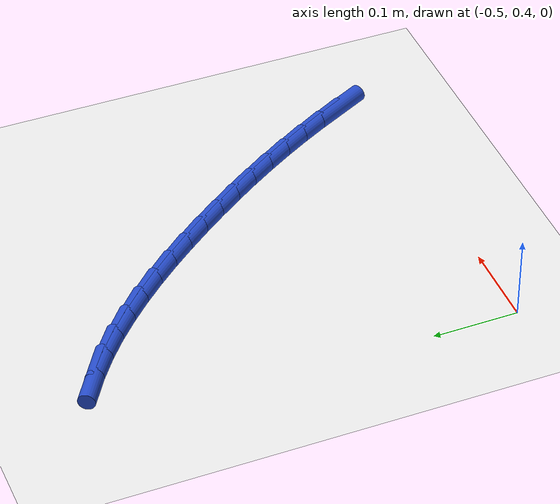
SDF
<sdf version="1.6">
 <world name="default">
  <model name="ground_plane">
   <static>1</static>
   <link name="link">
    <collision name="collision">
     <geometry><plane><normal>0 0 1</normal><size>100 100</size></plane></geometry>
     <surface><friction><ode><mu>100</mu><mu2>50</mu2></ode></friction></surface>
    </collision>
    <visual name="visual">
     <cast_shadows>0</cast_shadows>
     <geometry><plane><normal>0 0 1</normal><size>100 100</size></plane></geometry>
     <material>
      <script><uri>file://media/materials/scripts/gazebo.material</uri><name>Gazebo/WhiteGlow</name></script>
     </material>
    </visual>
   </link>
  </model>
  <model name="line">
   <link name="link_14">
    <pose>-0.10533587357686097 0.4467062673302369 0.01 0 1.57 -1.0991854840167534</pose>
    <collision name="collision">
     <geometry><cylinder><radius>0.01</radius><length>0.08</length></cylinder></geometry>
    </collision>
    <visual name="visual">
     <material>
      <script><name>Gazebo/Blue</name><uri>file://media/materials/scripts/gazebo.material</uri></script>
     </material>
     <geometry><cylinder><radius>0.01</radius><length>0.08</length></cylinder></geometry>
    </visual>
   </link>
   <link name="link_15">
    <pose>-0.12033190671898503 0.47611059716826165 0.01 0 1.57 -1.0717087342456912</pose>
    <collision name="collision">
     <geometry><cylinder><radius>0.01</radius><length>0.08</length></cylinder></geometry>
    </collision>
    <visual name="visual">
     <material>
      <script><name>Gazebo/Blue</name><uri>file://media/materials/scripts/gazebo.material</uri></script>
     </material>
     <geometry><cylinder><radius>0.01</radius><length>0.08</length></cylinder></geometry>
    </visual>
   </link>
   <link name="link_16">
    <pose>-0.1361529691423143 0.5051337660152084 0.01 0 1.57 -1.0454395284814884</pose>
    <collision name="collision">
     <geometry><cylinder><radius>0.01</radius><length>0.08</length></cylinder></geometry>
    </collision>
    <visual name="visual">
     <material>
      <script><name>Gazebo/Blue</name><uri>file://media/materials/scripts/gazebo.material</uri></script>
     </material>
     <geometry><cylinder><radius>0.01</radius><length>0.08</length></cylinder></geometry>
    </visual>
   </link>
   <link name="link_17">
    <pose>-0.1527603691347933 0.5337821962467407 0.01 0 1.57 -1.020375970094882</pose>
    <collision name="collision">
     <geometry><cylinder><radius>0.01</radius><length>0.08</length></cylinder></geometry>
    </collision>
    <visual name="visual">
     <material>
      <script><name>Gazebo/Blue</name><uri>file://media/materials/scripts/gazebo.material</uri></script>
     </material>
     <geometry><cylinder><radius>0.01</radius><length>0.08</length></cylinder></geometry>
    </visual>
   </link>
   <link name="link_18">
    <pose>-0.1701154149843666 0.5620623102385222 0.01 0 1.57 -0.9965099449236364</pose>
    <collision name="collision">
     <geometry><cylinder><radius>0.01</radius><length>0.08</length></cylinder></geometry>
    </collision>
    <visual name="visual">
     <material>
      <script><name>Gazebo/Blue</name><uri>file://media/materials/scripts/gazebo.material</uri></script>
     </material>
     <geometry><cylinder><radius>0.01</radius><length>0.08</length></cylinder></geometry>
    </visual>
   </link>
   <link name="link_19">
    <pose>-0.1881794149789789 0.5899805303662163 0.01 0 1.57 -0.9738282597687575</pose>
    <collision name="collision">
     <geometry><cylinder><radius>0.01</radius><length>0.08</length></cylinder></geometry>
    </collision>
    <visual name="visual">
     <material>
      <script><name>Gazebo/Blue</name><uri>file://media/materials/scripts/gazebo.material</uri></script>
     </material>
     <geometry><cylinder><radius>0.01</radius><length>0.08</length></cylinder></geometry>
    </visual>
   </link>
   <link name="link_20">
    <pose>-0.20691367740657482 0.617543279005487 0.01 0 1.57 -0.9523137074415136</pose>
    <collision name="collision">
     <geometry><cylinder><radius>0.01</radius><length>0.08</length></cylinder></geometry>
    </collision>
    <visual name="visual">
     <material>
      <script><name>Gazebo/Blue</name><uri>file://media/materials/scripts/gazebo.material</uri></script>
     </material>
     <geometry><cylinder><radius>0.01</radius><length>0.08</length></cylinder></geometry>
    </visual>
   </link>
   <link name="link_21">
    <pose>-0.22627951055509893 0.6447569785319979 0.01 0 1.57 -0.9319460433943224</pose>
    <collision name="collision">
     <geometry><cylinder><radius>0.01</radius><length>0.08</length></cylinder></geometry>
    </collision>
    <visual name="visual">
     <material>
      <script><name>Gazebo/Blue</name><uri>file://media/materials/scripts/gazebo.material</uri></script>
     </material>
     <geometry><cylinder><radius>0.01</radius><length>0.08</length></cylinder></geometry>
    </visual>
   </link>
   <link name="link_22">
    <pose>-0.24623822271249574 0.6716280513214121 0.01 0 1.57 -0.9121768304989757</pose>
    <collision name="collision">
     <geometry><cylinder><radius>0.01</radius><length>0.08</length></cylinder></geometry>
    </collision>
    <visual name="visual">
     <material>
      <script><name>Gazebo/Blue</name><uri>file://media/materials/scripts/gazebo.material</uri></script>
     </material>
     <geometry><cylinder><radius>0.01</radius><length>0.08</length></cylinder></geometry>
    </visual>
   </link>
   <link name="link_23">
    <pose>-0.26676074513045 0.6981465272667619 0.01 0 1.57 -0.8890715615643078</pose>
    <collision name="collision">
     <geometry><cylinder><radius>0.01</radius><length>0.08</length></cylinder></geometry>
    </collision>
    <visual name="visual">
     <material>
      <script><name>Gazebo/Blue</name><uri>file://media/materials/scripts/gazebo.material</uri></script>
     </material>
     <geometry><cylinder><radius>0.01</radius><length>0.08</length></cylinder></geometry>
    </visual>
   </link>
   <link name="link_24">
    <pose>-0.28788883141735166 0.7241817921140499 0.01 0 1.57 -0.8607309890439699</pose>
    <collision name="collision">
     <geometry><cylinder><radius>0.01</radius><length>0.08</length></cylinder></geometry>
    </collision>
    <visual name="visual">
     <material>
      <script><name>Gazebo/Blue</name><uri>file://media/materials/scripts/gazebo.material</uri></script>
     </material>
     <geometry><cylinder><radius>0.01</radius><length>0.08</length></cylinder></geometry>
    </visual>
   </link>
   <link name="link_25">
    <pose>-0.30969586198591387 0.749549356124075 0.01 0 1.57 -0.8269172972775372</pose>
    <collision name="collision">
     <geometry><cylinder><radius>0.01</radius><length>0.08</length></cylinder></geometry>
    </collision>
    <visual name="visual">
     <material>
      <script><name>Gazebo/Blue</name><uri>file://media/materials/scripts/gazebo.material</uri></script>
     </material>
     <geometry><cylinder><radius>0.01</radius><length>0.08</length></cylinder></geometry>
    </visual>
   </link>
   <link name="link_26">
    <pose>-0.33225536396307703 0.774064479633551 0.01 0 1.57 -0.7873707609153084</pose>
    <collision name="collision">
     <geometry><cylinder><radius>0.01</radius><length>0.08</length></cylinder></geometry>
    </collision>
    <visual name="visual">
     <material>
      <script><name>Gazebo/Blue</name><uri>file://media/materials/scripts/gazebo.material</uri></script>
     </material>
     <geometry><cylinder><radius>0.01</radius><length>0.08</length></cylinder></geometry>
    </visual>
   </link>
   <link name="link_27">
    <pose>-0.3556408644757811 0.7975424229791911 0.01 0 1.57 -0.741829771908615</pose>
    <collision name="collision">
     <geometry><cylinder><radius>0.01</radius><length>0.08</length></cylinder></geometry>
    </collision>
    <visual name="visual">
     <material>
      <script><name>Gazebo/Blue</name><uri>file://media/materials/scripts/gazebo.material</uri></script>
     </material>
     <geometry><cylinder><radius>0.01</radius><length>0.08</length></cylinder></geometry>
    </visual>
   </link>
   <link name="link_28">
    <pose>-0.37992589065096627 0.8197984464977087 0.01 0 1.57 -0.6900696915647543</pose>
    <collision name="collision">
     <geometry><cylinder><radius>0.01</radius><length>0.08</length></cylinder></geometry>
    </collision>
    <visual name="visual">
     <material>
      <script><name>Gazebo/Blue</name><uri>file://media/materials/scripts/gazebo.material</uri></script>
     </material>
     <geometry><cylinder><radius>0.01</radius><length>0.08</length></cylinder></geometry>
    </visual>
   </link>
   <link name="link_29">
    <pose>-0.4051839696155728 0.840647810525817 0.01 0 1.57 -0.6319543618539908</pose>
    <collision name="collision">
     <geometry><cylinder><radius>0.01</radius><length>0.08</length></cylinder></geometry>
    </collision>
    <visual name="visual">
     <material>
      <script><name>Gazebo/Blue</name><uri>file://media/materials/scripts/gazebo.material</uri></script>
     </material>
     <geometry><cylinder><radius>0.01</radius><length>0.08</length></cylinder></geometry>
    </visual>
   </link>
   <link name="link_30">
    <pose>-0.43148862849654096 0.8599057754002297 0.01 0 1.57 -0.5688159105620555</pose>
    <collision name="collision">
     <geometry><cylinder><radius>0.01</radius><length>0.08</length></cylinder></geometry>
    </collision>
    <visual name="visual">
     <material>
      <script><name>Gazebo/Blue</name><uri>file://media/materials/scripts/gazebo.material</uri></script>
     </material>
     <geometry><cylinder><radius>0.01</radius><length>0.08</length></cylinder></geometry>
    </visual>
   </link>
  </model>
 </world>
</sdf>
